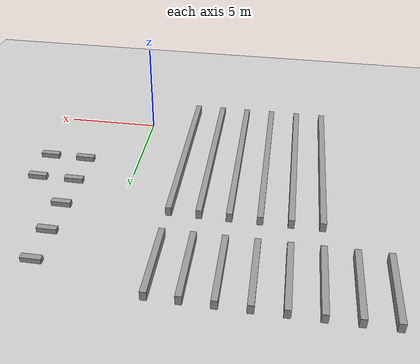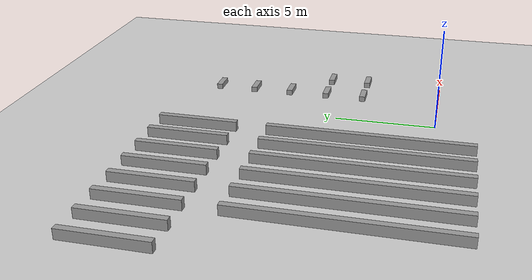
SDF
<sdf version="1.6">
 <world name="default">
  <model name="ground_plane">
   <static>1</static>
   <link name="link">
    <collision name="collision">
     <geometry><plane><normal>0 0 1</normal><size>100 100</size></plane></geometry>
     <surface><friction><ode><mu>100</mu><mu2>50</mu2></ode></friction></surface>
    </collision>
    <visual name="visual">
     <cast_shadows>0</cast_shadows>
     <geometry><plane><normal>0 0 1</normal><size>100 100</size></plane></geometry>
     <material>
      <script><uri>file://media/materials/scripts/gazebo.material</uri><name>Gazebo/Grey</name></script>
     </material>
    </visual>
   </link>
  </model>
  <model name="ss1_clone_1_0_clone_2">
   <link name="link_0">
    <inertial>
     <mass>1</mass>
     <inertia>
      <ixx>0.166667</ixx>
      <ixy>0</ixy>
      <ixz>0</ixz>
      <iyy>0.166667</iyy>
      <iyz>0</iyz>
      <izz>0.166667</izz>
     </inertia>
    </inertial>
    <visual name="visual">
     <geometry><box><size>0.3 10 0.5</size></box></geometry>
     <material>
      <lighting>1</lighting>
      <script><uri>file://media/materials/scripts/gazebo.material</uri><name>Gazebo/Grey</name></script>
      <ambient>0.3 0.3 0.3 1</ambient>
      <diffuse>0.7 0.7 0.7 1</diffuse>
      <specular>0.01 0.01 0.01 1</specular>
      <emissive>0 0 0 1</emissive>
      <shader type="vertex"><normal_map>__default__</normal_map></shader>
     </material>
    </visual>
    <collision name="collision">
     <geometry><box><size>0.3 10 0.5</size></box></geometry>
     <surface>
      <friction>
       <ode><mu>1</mu><mu2>1</mu2><fdir1>0 0 0</fdir1><slip1>0</slip1><slip2>0</slip2></ode>
       <torsional>
        <coefficient>1</coefficient>
        <patch_radius>0</patch_radius>
        <surface_radius>0</surface_radius>
        <use_patch_radius>1</use_patch_radius>
        <ode><slip>0</slip></ode>
       </torsional>
      </friction>
      <bounce><restitution_coefficient>0</restitution_coefficient><threshold>1e+06</threshold></bounce>
      <contact>
       <collide_without_contact>0</collide_without_contact>
       <collide_without_contact_bitmask>1</collide_without_contact_bitmask>
       <collide_bitmask>1</collide_bitmask>
       <ode>
        <soft_cfm>0</soft_cfm>
        <soft_erp>0.2</soft_erp>
        <kp>1e+13</kp>
        <kd>1</kd>
        <max_vel>0.01</max_vel>
        <min_depth>0</min_depth>
       </ode>
       <bullet>
        <split_impulse>1</split_impulse>
        <split_impulse_penetration_threshold>-0.01</split_impulse_penetration_threshold>
        <soft_cfm>0</soft_cfm>
        <soft_erp>0.2</soft_erp>
        <kp>1e+13</kp>
        <kd>1</kd>
       </bullet>
      </contact>
     </surface>
    </collision>
   </link>
   <static>0</static>
   <pose>-10 3 0.25 0 -0 0</pose>
  </model>
  <model name="ss1_clone_1_0_clone_3">
   <link name="link_0">
    <inertial>
     <mass>1</mass>
     <inertia>
      <ixx>0.166667</ixx>
      <ixy>0</ixy>
      <ixz>0</ixz>
      <iyy>0.166667</iyy>
      <iyz>0</iyz>
      <izz>0.166667</izz>
     </inertia>
    </inertial>
    <visual name="visual">
     <geometry><box><size>0.3 10 0.5</size></box></geometry>
     <material>
      <lighting>1</lighting>
      <script><uri>file://media/materials/scripts/gazebo.material</uri><name>Gazebo/Grey</name></script>
      <ambient>0.3 0.3 0.3 1</ambient>
      <diffuse>0.7 0.7 0.7 1</diffuse>
      <specular>0.01 0.01 0.01 1</specular>
      <emissive>0 0 0 1</emissive>
      <shader type="vertex"><normal_map>__default__</normal_map></shader>
     </material>
    </visual>
    <collision name="collision">
     <geometry><box><size>0.3 10 0.5</size></box></geometry>
     <surface>
      <friction>
       <ode><mu>1</mu><mu2>1</mu2><fdir1>0 0 0</fdir1><slip1>0</slip1><slip2>0</slip2></ode>
       <torsional>
        <coefficient>1</coefficient>
        <patch_radius>0</patch_radius>
        <surface_radius>0</surface_radius>
        <use_patch_radius>1</use_patch_radius>
        <ode><slip>0</slip></ode>
       </torsional>
      </friction>
      <bounce><restitution_coefficient>0</restitution_coefficient><threshold>1e+06</threshold></bounce>
      <contact>
       <collide_without_contact>0</collide_without_contact>
       <collide_without_contact_bitmask>1</collide_without_contact_bitmask>
       <collide_bitmask>1</collide_bitmask>
       <ode>
        <soft_cfm>0</soft_cfm>
        <soft_erp>0.2</soft_erp>
        <kp>1e+13</kp>
        <kd>1</kd>
        <max_vel>0.01</max_vel>
        <min_depth>0</min_depth>
       </ode>
       <bullet>
        <split_impulse>1</split_impulse>
        <split_impulse_penetration_threshold>-0.01</split_impulse_penetration_threshold>
        <soft_cfm>0</soft_cfm>
        <soft_erp>0.2</soft_erp>
        <kp>1e+13</kp>
        <kd>1</kd>
       </bullet>
      </contact>
     </surface>
    </collision>
   </link>
   <static>0</static>
   <pose>-8.5 3 0.25 0 -0 0</pose>
  </model>
  <model name="ss1_clone_1_0_clone_4">
   <link name="link_0">
    <inertial>
     <mass>1</mass>
     <inertia>
      <ixx>0.166667</ixx>
      <ixy>0</ixy>
      <ixz>0</ixz>
      <iyy>0.166667</iyy>
      <iyz>0</iyz>
      <izz>0.166667</izz>
     </inertia>
    </inertial>
    <visual name="visual">
     <geometry><box><size>0.3 10 0.5</size></box></geometry>
     <material>
      <lighting>1</lighting>
      <script><uri>file://media/materials/scripts/gazebo.material</uri><name>Gazebo/Grey</name></script>
      <ambient>0.3 0.3 0.3 1</ambient>
      <diffuse>0.7 0.7 0.7 1</diffuse>
      <specular>0.01 0.01 0.01 1</specular>
      <emissive>0 0 0 1</emissive>
      <shader type="vertex"><normal_map>__default__</normal_map></shader>
     </material>
    </visual>
    <collision name="collision">
     <geometry><box><size>0.3 10 0.5</size></box></geometry>
     <surface>
      <friction>
       <ode><mu>1</mu><mu2>1</mu2><fdir1>0 0 0</fdir1><slip1>0</slip1><slip2>0</slip2></ode>
       <torsional>
        <coefficient>1</coefficient>
        <patch_radius>0</patch_radius>
        <surface_radius>0</surface_radius>
        <use_patch_radius>1</use_patch_radius>
        <ode><slip>0</slip></ode>
       </torsional>
      </friction>
      <bounce><restitution_coefficient>0</restitution_coefficient><threshold>1e+06</threshold></bounce>
      <contact>
       <collide_without_contact>0</collide_without_contact>
       <collide_without_contact_bitmask>1</collide_without_contact_bitmask>
       <collide_bitmask>1</collide_bitmask>
       <ode>
        <soft_cfm>0</soft_cfm>
        <soft_erp>0.2</soft_erp>
        <kp>1e+13</kp>
        <kd>1</kd>
        <max_vel>0.01</max_vel>
        <min_depth>0</min_depth>
       </ode>
       <bullet>
        <split_impulse>1</split_impulse>
        <split_impulse_penetration_threshold>-0.01</split_impulse_penetration_threshold>
        <soft_cfm>0</soft_cfm>
        <soft_erp>0.2</soft_erp>
        <kp>1e+13</kp>
        <kd>1</kd>
       </bullet>
      </contact>
     </surface>
    </collision>
   </link>
   <static>0</static>
   <pose>-7 3 0.25 0 -0 0</pose>
  </model>
  <model name="ss1_clone_1_0_clone_5">
   <link name="link_0">
    <inertial>
     <mass>1</mass>
     <inertia>
      <ixx>0.166667</ixx>
      <ixy>0</ixy>
      <ixz>0</ixz>
      <iyy>0.166667</iyy>
      <iyz>0</iyz>
      <izz>0.166667</izz>
     </inertia>
    </inertial>
    <visual name="visual">
     <geometry><box><size>0.3 10 0.5</size></box></geometry>
     <material>
      <lighting>1</lighting>
      <script><uri>file://media/materials/scripts/gazebo.material</uri><name>Gazebo/Grey</name></script>
      <ambient>0.3 0.3 0.3 1</ambient>
      <diffuse>0.7 0.7 0.7 1</diffuse>
      <specular>0.01 0.01 0.01 1</specular>
      <emissive>0 0 0 1</emissive>
      <shader type="vertex"><normal_map>__default__</normal_map></shader>
     </material>
    </visual>
    <collision name="collision">
     <geometry><box><size>0.3 10 0.5</size></box></geometry>
     <surface>
      <friction>
       <ode><mu>1</mu><mu2>1</mu2><fdir1>0 0 0</fdir1><slip1>0</slip1><slip2>0</slip2></ode>
       <torsional>
        <coefficient>1</coefficient>
        <patch_radius>0</patch_radius>
        <surface_radius>0</surface_radius>
        <use_patch_radius>1</use_patch_radius>
        <ode><slip>0</slip></ode>
       </torsional>
      </friction>
      <bounce><restitution_coefficient>0</restitution_coefficient><threshold>1e+06</threshold></bounce>
      <contact>
       <collide_without_contact>0</collide_without_contact>
       <collide_without_contact_bitmask>1</collide_without_contact_bitmask>
       <collide_bitmask>1</collide_bitmask>
       <ode>
        <soft_cfm>0</soft_cfm>
        <soft_erp>0.2</soft_erp>
        <kp>1e+13</kp>
        <kd>1</kd>
        <max_vel>0.01</max_vel>
        <min_depth>0</min_depth>
       </ode>
       <bullet>
        <split_impulse>1</split_impulse>
        <split_impulse_penetration_threshold>-0.01</split_impulse_penetration_threshold>
        <soft_cfm>0</soft_cfm>
        <soft_erp>0.2</soft_erp>
        <kp>1e+13</kp>
        <kd>1</kd>
       </bullet>
      </contact>
     </surface>
    </collision>
   </link>
   <static>0</static>
   <pose>-5.5 3 0.25 0 -0 0</pose>
  </model>
  <model name="ss1_clone_1_0_clone_6">
   <link name="link_0">
    <inertial>
     <mass>1</mass>
     <inertia>
      <ixx>0.166667</ixx>
      <ixy>0</ixy>
      <ixz>0</ixz>
      <iyy>0.166667</iyy>
      <iyz>0</iyz>
      <izz>0.166667</izz>
     </inertia>
    </inertial>
    <visual name="visual">
     <geometry><box><size>0.3 10 0.5</size></box></geometry>
     <material>
      <lighting>1</lighting>
      <script><uri>file://media/materials/scripts/gazebo.material</uri><name>Gazebo/Grey</name></script>
      <ambient>0.3 0.3 0.3 1</ambient>
      <diffuse>0.7 0.7 0.7 1</diffuse>
      <specular>0.01 0.01 0.01 1</specular>
      <emissive>0 0 0 1</emissive>
      <shader type="vertex"><normal_map>__default__</normal_map></shader>
     </material>
    </visual>
    <collision name="collision">
     <geometry><box><size>0.3 10 0.5</size></box></geometry>
     <surface>
      <friction>
       <ode><mu>1</mu><mu2>1</mu2><fdir1>0 0 0</fdir1><slip1>0</slip1><slip2>0</slip2></ode>
       <torsional>
        <coefficient>1</coefficient>
        <patch_radius>0</patch_radius>
        <surface_radius>0</surface_radius>
        <use_patch_radius>1</use_patch_radius>
        <ode><slip>0</slip></ode>
       </torsional>
      </friction>
      <bounce><restitution_coefficient>0</restitution_coefficient><threshold>1e+06</threshold></bounce>
      <contact>
       <collide_without_contact>0</collide_without_contact>
       <collide_without_contact_bitmask>1</collide_without_contact_bitmask>
       <collide_bitmask>1</collide_bitmask>
       <ode>
        <soft_cfm>0</soft_cfm>
        <soft_erp>0.2</soft_erp>
        <kp>1e+13</kp>
        <kd>1</kd>
        <max_vel>0.01</max_vel>
        <min_depth>0</min_depth>
       </ode>
       <bullet>
        <split_impulse>1</split_impulse>
        <split_impulse_penetration_threshold>-0.01</split_impulse_penetration_threshold>
        <soft_cfm>0</soft_cfm>
        <soft_erp>0.2</soft_erp>
        <kp>1e+13</kp>
        <kd>1</kd>
       </bullet>
      </contact>
     </surface>
    </collision>
   </link>
   <static>0</static>
   <pose>-4 3 0.25 0 -0 0</pose>
  </model>
  <model name="ss1_clone_1_0_clone_7">
   <link name="link_0">
    <inertial>
     <mass>1</mass>
     <inertia>
      <ixx>0.166667</ixx>
      <ixy>0</ixy>
      <ixz>0</ixz>
      <iyy>0.166667</iyy>
      <iyz>0</iyz>
      <izz>0.166667</izz>
     </inertia>
    </inertial>
    <visual name="visual">
     <geometry><box><size>0.3 10 0.5</size></box></geometry>
     <material>
      <lighting>1</lighting>
      <script><uri>file://media/materials/scripts/gazebo.material</uri><name>Gazebo/Grey</name></script>
      <ambient>0.3 0.3 0.3 1</ambient>
      <diffuse>0.7 0.7 0.7 1</diffuse>
      <specular>0.01 0.01 0.01 1</specular>
      <emissive>0 0 0 1</emissive>
      <shader type="vertex"><normal_map>__default__</normal_map></shader>
     </material>
    </visual>
    <collision name="collision">
     <geometry><box><size>0.3 10 0.5</size></box></geometry>
     <surface>
      <friction>
       <ode><mu>1</mu><mu2>1</mu2><fdir1>0 0 0</fdir1><slip1>0</slip1><slip2>0</slip2></ode>
       <torsional>
        <coefficient>1</coefficient>
        <patch_radius>0</patch_radius>
        <surface_radius>0</surface_radius>
        <use_patch_radius>1</use_patch_radius>
        <ode><slip>0</slip></ode>
       </torsional>
      </friction>
      <bounce><restitution_coefficient>0</restitution_coefficient><threshold>1e+06</threshold></bounce>
      <contact>
       <collide_without_contact>0</collide_without_contact>
       <collide_without_contact_bitmask>1</collide_without_contact_bitmask>
       <collide_bitmask>1</collide_bitmask>
       <ode>
        <soft_cfm>0</soft_cfm>
        <soft_erp>0.2</soft_erp>
        <kp>1e+13</kp>
        <kd>1</kd>
        <max_vel>0.01</max_vel>
        <min_depth>0</min_depth>
       </ode>
       <bullet>
        <split_impulse>1</split_impulse>
        <split_impulse_penetration_threshold>-0.01</split_impulse_penetration_threshold>
        <soft_cfm>0</soft_cfm>
        <soft_erp>0.2</soft_erp>
        <kp>1e+13</kp>
        <kd>1</kd>
       </bullet>
      </contact>
     </surface>
    </collision>
   </link>
   <static>0</static>
   <pose>-2.5 3 0.25 0 -0 0</pose>
  </model>
  <model name="ss1_me">
   <link name="link_0">
    <inertial>
     <mass>1</mass>
     <inertia>
      <ixx>0.166667</ixx>
      <ixy>0</ixy>
      <ixz>0</ixz>
      <iyy>0.166667</iyy>
      <iyz>0</iyz>
      <izz>0.166667</izz>
     </inertia>
    </inertial>
    <visual name="visual">
     <geometry><box><size>0.3 4 0.5</size></box></geometry>
     <material>
      <lighting>1</lighting>
      <script><uri>file://media/materials/scripts/gazebo.material</uri><name>Gazebo/Grey</name></script>
      <ambient>0.3 0.3 0.3 1</ambient>
      <diffuse>0.7 0.7 0.7 1</diffuse>
      <specular>0.01 0.01 0.01 1</specular>
      <emissive>0 0 0 1</emissive>
      <shader type="vertex"><normal_map>__default__</normal_map></shader>
     </material>
    </visual>
    <collision name="collision">
     <geometry><box><size>0.3 1 0.5</size></box></geometry>
     <surface>
      <friction>
       <ode><mu>1</mu><mu2>1</mu2><fdir1>0 0 0</fdir1><slip1>0</slip1><slip2>0</slip2></ode>
       <torsional>
        <coefficient>1</coefficient>
        <patch_radius>0</patch_radius>
        <surface_radius>0</surface_radius>
        <use_patch_radius>1</use_patch_radius>
        <ode><slip>0</slip></ode>
       </torsional>
      </friction>
      <bounce><restitution_coefficient>0</restitution_coefficient><threshold>1e+06</threshold></bounce>
      <contact>
       <collide_without_contact>0</collide_without_contact>
       <collide_without_contact_bitmask>1</collide_without_contact_bitmask>
       <collide_bitmask>1</collide_bitmask>
       <ode>
        <soft_cfm>0</soft_cfm>
        <soft_erp>0.2</soft_erp>
        <kp>1e+13</kp>
        <kd>1</kd>
        <max_vel>0.01</max_vel>
        <min_depth>0</min_depth>
       </ode>
       <bullet>
        <split_impulse>1</split_impulse>
        <split_impulse_penetration_threshold>-0.01</split_impulse_penetration_threshold>
        <soft_cfm>0</soft_cfm>
        <soft_erp>0.2</soft_erp>
        <kp>1e+13</kp>
        <kd>1</kd>
       </bullet>
      </contact>
     </surface>
    </collision>
   </link>
   <static>0</static>
   <pose>-13 11.5 0.249999 0 -0 0</pose>
  </model>
  <model name="ss1_me_clone">
   <link name="link_0">
    <inertial>
     <mass>1</mass>
     <inertia>
      <ixx>0.166667</ixx>
      <ixy>0</ixy>
      <ixz>0</ixz>
      <iyy>0.166667</iyy>
      <iyz>0</iyz>
      <izz>0.166667</izz>
     </inertia>
    </inertial>
    <visual name="visual">
     <geometry><box><size>0.3 4 0.5</size></box></geometry>
     <material>
      <lighting>1</lighting>
      <script><uri>file://media/materials/scripts/gazebo.material</uri><name>Gazebo/Grey</name></script>
      <ambient>0.3 0.3 0.3 1</ambient>
      <diffuse>0.7 0.7 0.7 1</diffuse>
      <specular>0.01 0.01 0.01 1</specular>
      <emissive>0 0 0 1</emissive>
      <shader type="vertex"><normal_map>__default__</normal_map></shader>
     </material>
    </visual>
    <collision name="collision">
     <geometry><box><size>0.3 1 0.5</size></box></geometry>
     <surface>
      <friction>
       <ode><mu>1</mu><mu2>1</mu2><fdir1>0 0 0</fdir1><slip1>0</slip1><slip2>0</slip2></ode>
       <torsional>
        <coefficient>1</coefficient>
        <patch_radius>0</patch_radius>
        <surface_radius>0</surface_radius>
        <use_patch_radius>1</use_patch_radius>
        <ode><slip>0</slip></ode>
       </torsional>
      </friction>
      <bounce><restitution_coefficient>0</restitution_coefficient><threshold>1e+06</threshold></bounce>
      <contact>
       <collide_without_contact>0</collide_without_contact>
       <collide_without_contact_bitmask>1</collide_without_contact_bitmask>
       <collide_bitmask>1</collide_bitmask>
       <ode>
        <soft_cfm>0</soft_cfm>
        <soft_erp>0.2</soft_erp>
        <kp>1e+13</kp>
        <kd>1</kd>
        <max_vel>0.01</max_vel>
        <min_depth>0</min_depth>
       </ode>
       <bullet>
        <split_impulse>1</split_impulse>
        <split_impulse_penetration_threshold>-0.01</split_impulse_penetration_threshold>
        <soft_cfm>0</soft_cfm>
        <soft_erp>0.2</soft_erp>
        <kp>1e+13</kp>
        <kd>1</kd>
       </bullet>
      </contact>
     </surface>
    </collision>
   </link>
   <static>0</static>
   <pose>-11.5 11.5 0.249999 0 -0 0</pose>
  </model>
  <model name="ss1_me_clone_0">
   <link name="link_0">
    <inertial>
     <mass>1</mass>
     <inertia>
      <ixx>0.166667</ixx>
      <ixy>0</ixy>
      <ixz>0</ixz>
      <iyy>0.166667</iyy>
      <iyz>0</iyz>
      <izz>0.166667</izz>
     </inertia>
    </inertial>
    <visual name="visual">
     <geometry><box><size>0.3 4 0.5</size></box></geometry>
     <material>
      <lighting>1</lighting>
      <script><uri>file://media/materials/scripts/gazebo.material</uri><name>Gazebo/Grey</name></script>
      <ambient>0.3 0.3 0.3 1</ambient>
      <diffuse>0.7 0.7 0.7 1</diffuse>
      <specular>0.01 0.01 0.01 1</specular>
      <emissive>0 0 0 1</emissive>
      <shader type="vertex"><normal_map>__default__</normal_map></shader>
     </material>
    </visual>
    <collision name="collision">
     <geometry><box><size>0.3 1 0.5</size></box></geometry>
     <surface>
      <friction>
       <ode><mu>1</mu><mu2>1</mu2><fdir1>0 0 0</fdir1><slip1>0</slip1><slip2>0</slip2></ode>
       <torsional>
        <coefficient>1</coefficient>
        <patch_radius>0</patch_radius>
        <surface_radius>0</surface_radius>
        <use_patch_radius>1</use_patch_radius>
        <ode><slip>0</slip></ode>
       </torsional>
      </friction>
      <bounce><restitution_coefficient>0</restitution_coefficient><threshold>1e+06</threshold></bounce>
      <contact>
       <collide_without_contact>0</collide_without_contact>
       <collide_without_contact_bitmask>1</collide_without_contact_bitmask>
       <collide_bitmask>1</collide_bitmask>
       <ode>
        <soft_cfm>0</soft_cfm>
        <soft_erp>0.2</soft_erp>
        <kp>1e+13</kp>
        <kd>1</kd>
        <max_vel>0.01</max_vel>
        <min_depth>0</min_depth>
       </ode>
       <bullet>
        <split_impulse>1</split_impulse>
        <split_impulse_penetration_threshold>-0.01</split_impulse_penetration_threshold>
        <soft_cfm>0</soft_cfm>
        <soft_erp>0.2</soft_erp>
        <kp>1e+13</kp>
        <kd>1</kd>
       </bullet>
      </contact>
     </surface>
    </collision>
   </link>
   <static>0</static>
   <pose>-10 11.5 0.25 0 -0 0</pose>
  </model>
  <model name="ss1_me_clone_1">
   <link name="link_0">
    <inertial>
     <mass>1</mass>
     <inertia>
      <ixx>0.166667</ixx>
      <ixy>0</ixy>
      <ixz>0</ixz>
      <iyy>0.166667</iyy>
      <iyz>0</iyz>
      <izz>0.166667</izz>
     </inertia>
    </inertial>
    <visual name="visual">
     <geometry><box><size>0.3 4 0.5</size></box></geometry>
     <material>
      <lighting>1</lighting>
      <script><uri>file://media/materials/scripts/gazebo.material</uri><name>Gazebo/Grey</name></script>
      <ambient>0.3 0.3 0.3 1</ambient>
      <diffuse>0.7 0.7 0.7 1</diffuse>
      <specular>0.01 0.01 0.01 1</specular>
      <emissive>0 0 0 1</emissive>
      <shader type="vertex"><normal_map>__default__</normal_map></shader>
     </material>
    </visual>
    <collision name="collision">
     <geometry><box><size>0.3 1 0.5</size></box></geometry>
     <surface>
      <friction>
       <ode><mu>1</mu><mu2>1</mu2><fdir1>0 0 0</fdir1><slip1>0</slip1><slip2>0</slip2></ode>
       <torsional>
        <coefficient>1</coefficient>
        <patch_radius>0</patch_radius>
        <surface_radius>0</surface_radius>
        <use_patch_radius>1</use_patch_radius>
        <ode><slip>0</slip></ode>
       </torsional>
      </friction>
      <bounce><restitution_coefficient>0</restitution_coefficient><threshold>1e+06</threshold></bounce>
      <contact>
       <collide_without_contact>0</collide_without_contact>
       <collide_without_contact_bitmask>1</collide_without_contact_bitmask>
       <collide_bitmask>1</collide_bitmask>
       <ode>
        <soft_cfm>0</soft_cfm>
        <soft_erp>0.2</soft_erp>
        <kp>1e+13</kp>
        <kd>1</kd>
        <max_vel>0.01</max_vel>
        <min_depth>0</min_depth>
       </ode>
       <bullet>
        <split_impulse>1</split_impulse>
        <split_impulse_penetration_threshold>-0.01</split_impulse_penetration_threshold>
        <soft_cfm>0</soft_cfm>
        <soft_erp>0.2</soft_erp>
        <kp>1e+13</kp>
        <kd>1</kd>
       </bullet>
      </contact>
     </surface>
    </collision>
   </link>
   <static>0</static>
   <pose>-8.5 11.5 0.249999 0 -0 0</pose>
  </model>
  <model name="ss1_me_clone_2">
   <link name="link_0">
    <inertial>
     <mass>1</mass>
     <inertia>
      <ixx>0.166667</ixx>
      <ixy>0</ixy>
      <ixz>0</ixz>
      <iyy>0.166667</iyy>
      <iyz>0</iyz>
      <izz>0.166667</izz>
     </inertia>
    </inertial>
    <visual name="visual">
     <geometry><box><size>0.3 4 0.5</size></box></geometry>
     <material>
      <lighting>1</lighting>
      <script><uri>file://media/materials/scripts/gazebo.material</uri><name>Gazebo/Grey</name></script>
      <ambient>0.3 0.3 0.3 1</ambient>
      <diffuse>0.7 0.7 0.7 1</diffuse>
      <specular>0.01 0.01 0.01 1</specular>
      <emissive>0 0 0 1</emissive>
      <shader type="vertex"><normal_map>__default__</normal_map></shader>
     </material>
    </visual>
    <collision name="collision">
     <geometry><box><size>0.3 1 0.5</size></box></geometry>
     <surface>
      <friction>
       <ode><mu>1</mu><mu2>1</mu2><fdir1>0 0 0</fdir1><slip1>0</slip1><slip2>0</slip2></ode>
       <torsional>
        <coefficient>1</coefficient>
        <patch_radius>0</patch_radius>
        <surface_radius>0</surface_radius>
        <use_patch_radius>1</use_patch_radius>
        <ode><slip>0</slip></ode>
       </torsional>
      </friction>
      <bounce><restitution_coefficient>0</restitution_coefficient><threshold>1e+06</threshold></bounce>
      <contact>
       <collide_without_contact>0</collide_without_contact>
       <collide_without_contact_bitmask>1</collide_without_contact_bitmask>
       <collide_bitmask>1</collide_bitmask>
       <ode>
        <soft_cfm>0</soft_cfm>
        <soft_erp>0.2</soft_erp>
        <kp>1e+13</kp>
        <kd>1</kd>
        <max_vel>0.01</max_vel>
        <min_depth>0</min_depth>
       </ode>
       <bullet>
        <split_impulse>1</split_impulse>
        <split_impulse_penetration_threshold>-0.01</split_impulse_penetration_threshold>
        <soft_cfm>0</soft_cfm>
        <soft_erp>0.2</soft_erp>
        <kp>1e+13</kp>
        <kd>1</kd>
       </bullet>
      </contact>
     </surface>
    </collision>
   </link>
   <static>0</static>
   <pose>-7 11.5 0.249999 0 -0 0</pose>
  </model>
  <model name="ss1_me_clone_3">
   <link name="link_0">
    <inertial>
     <mass>1</mass>
     <inertia>
      <ixx>0.166667</ixx>
      <ixy>0</ixy>
      <ixz>0</ixz>
      <iyy>0.166667</iyy>
      <iyz>0</iyz>
      <izz>0.166667</izz>
     </inertia>
    </inertial>
    <visual name="visual">
     <geometry><box><size>0.3 4 0.5</size></box></geometry>
     <material>
      <lighting>1</lighting>
      <script><uri>file://media/materials/scripts/gazebo.material</uri><name>Gazebo/Grey</name></script>
      <ambient>0.3 0.3 0.3 1</ambient>
      <diffuse>0.7 0.7 0.7 1</diffuse>
      <specular>0.01 0.01 0.01 1</specular>
      <emissive>0 0 0 1</emissive>
      <shader type="vertex"><normal_map>__default__</normal_map></shader>
     </material>
    </visual>
    <collision name="collision">
     <geometry><box><size>0.3 1 0.5</size></box></geometry>
     <surface>
      <friction>
       <ode><mu>1</mu><mu2>1</mu2><fdir1>0 0 0</fdir1><slip1>0</slip1><slip2>0</slip2></ode>
       <torsional>
        <coefficient>1</coefficient>
        <patch_radius>0</patch_radius>
        <surface_radius>0</surface_radius>
        <use_patch_radius>1</use_patch_radius>
        <ode><slip>0</slip></ode>
       </torsional>
      </friction>
      <bounce><restitution_coefficient>0</restitution_coefficient><threshold>1e+06</threshold></bounce>
      <contact>
       <collide_without_contact>0</collide_without_contact>
       <collide_without_contact_bitmask>1</collide_without_contact_bitmask>
       <collide_bitmask>1</collide_bitmask>
       <ode>
        <soft_cfm>0</soft_cfm>
        <soft_erp>0.2</soft_erp>
        <kp>1e+13</kp>
        <kd>1</kd>
        <max_vel>0.01</max_vel>
        <min_depth>0</min_depth>
       </ode>
       <bullet>
        <split_impulse>1</split_impulse>
        <split_impulse_penetration_threshold>-0.01</split_impulse_penetration_threshold>
        <soft_cfm>0</soft_cfm>
        <soft_erp>0.2</soft_erp>
        <kp>1e+13</kp>
        <kd>1</kd>
       </bullet>
      </contact>
     </surface>
    </collision>
   </link>
   <static>0</static>
   <pose>-5.5 11.5 0.249999 0 -0 0</pose>
  </model>
  <model name="ss1_me_clone_4">
   <link name="link_0">
    <inertial>
     <mass>1</mass>
     <inertia>
      <ixx>0.166667</ixx>
      <ixy>0</ixy>
      <ixz>0</ixz>
      <iyy>0.166667</iyy>
      <iyz>0</iyz>
      <izz>0.166667</izz>
     </inertia>
    </inertial>
    <visual name="visual">
     <geometry><box><size>0.3 4 0.5</size></box></geometry>
     <material>
      <lighting>1</lighting>
      <script><uri>file://media/materials/scripts/gazebo.material</uri><name>Gazebo/Grey</name></script>
      <ambient>0.3 0.3 0.3 1</ambient>
      <diffuse>0.7 0.7 0.7 1</diffuse>
      <specular>0.01 0.01 0.01 1</specular>
      <emissive>0 0 0 1</emissive>
      <shader type="vertex"><normal_map>__default__</normal_map></shader>
     </material>
    </visual>
    <collision name="collision">
     <geometry><box><size>0.3 1 0.5</size></box></geometry>
     <surface>
      <friction>
       <ode><mu>1</mu><mu2>1</mu2><fdir1>0 0 0</fdir1><slip1>0</slip1><slip2>0</slip2></ode>
       <torsional>
        <coefficient>1</coefficient>
        <patch_radius>0</patch_radius>
        <surface_radius>0</surface_radius>
        <use_patch_radius>1</use_patch_radius>
        <ode><slip>0</slip></ode>
       </torsional>
      </friction>
      <bounce><restitution_coefficient>0</restitution_coefficient><threshold>1e+06</threshold></bounce>
      <contact>
       <collide_without_contact>0</collide_without_contact>
       <collide_without_contact_bitmask>1</collide_without_contact_bitmask>
       <collide_bitmask>1</collide_bitmask>
       <ode>
        <soft_cfm>0</soft_cfm>
        <soft_erp>0.2</soft_erp>
        <kp>1e+13</kp>
        <kd>1</kd>
        <max_vel>0.01</max_vel>
        <min_depth>0</min_depth>
       </ode>
       <bullet>
        <split_impulse>1</split_impulse>
        <split_impulse_penetration_threshold>-0.01</split_impulse_penetration_threshold>
        <soft_cfm>0</soft_cfm>
        <soft_erp>0.2</soft_erp>
        <kp>1e+13</kp>
        <kd>1</kd>
       </bullet>
      </contact>
     </surface>
    </collision>
   </link>
   <static>0</static>
   <pose>-4 11.5 0.249999 0 -0 0</pose>
  </model>
  <model name="ss1_me_clone_5">
   <link name="link_0">
    <inertial>
     <mass>1</mass>
     <inertia>
      <ixx>0.166667</ixx>
      <ixy>0</ixy>
      <ixz>0</ixz>
      <iyy>0.166667</iyy>
      <iyz>0</iyz>
      <izz>0.166667</izz>
     </inertia>
    </inertial>
    <visual name="visual">
     <geometry><box><size>0.3 4 0.5</size></box></geometry>
     <material>
      <lighting>1</lighting>
      <script><uri>file://media/materials/scripts/gazebo.material</uri><name>Gazebo/Grey</name></script>
      <ambient>0.3 0.3 0.3 1</ambient>
      <diffuse>0.7 0.7 0.7 1</diffuse>
      <specular>0.01 0.01 0.01 1</specular>
      <emissive>0 0 0 1</emissive>
      <shader type="vertex"><normal_map>__default__</normal_map></shader>
     </material>
    </visual>
    <collision name="collision">
     <geometry><box><size>0.3 1 0.5</size></box></geometry>
     <surface>
      <friction>
       <ode><mu>1</mu><mu2>1</mu2><fdir1>0 0 0</fdir1><slip1>0</slip1><slip2>0</slip2></ode>
       <torsional>
        <coefficient>1</coefficient>
        <patch_radius>0</patch_radius>
        <surface_radius>0</surface_radius>
        <use_patch_radius>1</use_patch_radius>
        <ode><slip>0</slip></ode>
       </torsional>
      </friction>
      <bounce><restitution_coefficient>0</restitution_coefficient><threshold>1e+06</threshold></bounce>
      <contact>
       <collide_without_contact>0</collide_without_contact>
       <collide_without_contact_bitmask>1</collide_without_contact_bitmask>
       <collide_bitmask>1</collide_bitmask>
       <ode>
        <soft_cfm>0</soft_cfm>
        <soft_erp>0.2</soft_erp>
        <kp>1e+13</kp>
        <kd>1</kd>
        <max_vel>0.01</max_vel>
        <min_depth>0</min_depth>
       </ode>
       <bullet>
        <split_impulse>1</split_impulse>
        <split_impulse_penetration_threshold>-0.01</split_impulse_penetration_threshold>
        <soft_cfm>0</soft_cfm>
        <soft_erp>0.2</soft_erp>
        <kp>1e+13</kp>
        <kd>1</kd>
       </bullet>
      </contact>
     </surface>
    </collision>
   </link>
   <static>0</static>
   <pose>-2.5 11.5 0.249999 0 -0 0</pose>
  </model>
  <model name="ss1_0_clone_clone_15">
   <link name="link_0">
    <inertial>
     <mass>1</mass>
     <inertia>
      <ixx>0.166667</ixx>
      <ixy>0</ixy>
      <ixz>0</ixz>
      <iyy>0.166667</iyy>
      <iyz>0</iyz>
      <izz>0.166667</izz>
     </inertia>
    </inertial>
    <visual name="visual">
     <geometry><box><size>0.3 1 0.5</size></box></geometry>
     <material>
      <lighting>1</lighting>
      <script><uri>file://media/materials/scripts/gazebo.material</uri><name>Gazebo/Grey</name></script>
      <ambient>0.3 0.3 0.3 1</ambient>
      <diffuse>0.7 0.7 0.7 1</diffuse>
      <specular>0.01 0.01 0.01 1</specular>
      <emissive>0 0 0 1</emissive>
      <shader type="vertex"><normal_map>__default__</normal_map></shader>
     </material>
    </visual>
    <collision name="collision">
     <geometry><box><size>0.3 1 0.5</size></box></geometry>
     <surface>
      <friction>
       <ode><mu>1</mu><mu2>1</mu2><fdir1>0 0 0</fdir1><slip1>0</slip1><slip2>0</slip2></ode>
       <torsional>
        <coefficient>1</coefficient>
        <patch_radius>0</patch_radius>
        <surface_radius>0</surface_radius>
        <use_patch_radius>1</use_patch_radius>
        <ode><slip>0</slip></ode>
       </torsional>
      </friction>
      <bounce><restitution_coefficient>0</restitution_coefficient><threshold>1e+06</threshold></bounce>
      <contact>
       <collide_without_contact>0</collide_without_contact>
       <collide_without_contact_bitmask>1</collide_without_contact_bitmask>
       <collide_bitmask>1</collide_bitmask>
       <ode>
        <soft_cfm>0</soft_cfm>
        <soft_erp>0.2</soft_erp>
        <kp>1e+13</kp>
        <kd>1</kd>
        <max_vel>0.01</max_vel>
        <min_depth>0</min_depth>
       </ode>
       <bullet>
        <split_impulse>1</split_impulse>
        <split_impulse_penetration_threshold>-0.01</split_impulse_penetration_threshold>
        <soft_cfm>0</soft_cfm>
        <soft_erp>0.2</soft_erp>
        <kp>1e+13</kp>
        <kd>1</kd>
       </bullet>
      </contact>
     </surface>
    </collision>
   </link>
   <static>0</static>
   <pose>3 4 0 0 -0 1.5708</pose>
  </model>
  <model name="ss1_0_clone_clone_16">
   <link name="link_0">
    <inertial>
     <mass>1</mass>
     <inertia>
      <ixx>0.166667</ixx>
      <ixy>0</ixy>
      <ixz>0</ixz>
      <iyy>0.166667</iyy>
      <iyz>0</iyz>
      <izz>0.166667</izz>
     </inertia>
    </inertial>
    <visual name="visual">
     <geometry><box><size>0.3 1 0.5</size></box></geometry>
     <material>
      <lighting>1</lighting>
      <script><uri>file://media/materials/scripts/gazebo.material</uri><name>Gazebo/Grey</name></script>
      <ambient>0.3 0.3 0.3 1</ambient>
      <diffuse>0.7 0.7 0.7 1</diffuse>
      <specular>0.01 0.01 0.01 1</specular>
      <emissive>0 0 0 1</emissive>
      <shader type="vertex"><normal_map>__default__</normal_map></shader>
     </material>
    </visual>
    <collision name="collision">
     <geometry><box><size>0.3 1 0.5</size></box></geometry>
     <surface>
      <friction>
       <ode><mu>1</mu><mu2>1</mu2><fdir1>0 0 0</fdir1><slip1>0</slip1><slip2>0</slip2></ode>
       <torsional>
        <coefficient>1</coefficient>
        <patch_radius>0</patch_radius>
        <surface_radius>0</surface_radius>
        <use_patch_radius>1</use_patch_radius>
        <ode><slip>0</slip></ode>
       </torsional>
      </friction>
      <bounce><restitution_coefficient>0</restitution_coefficient><threshold>1e+06</threshold></bounce>
      <contact>
       <collide_without_contact>0</collide_without_contact>
       <collide_without_contact_bitmask>1</collide_without_contact_bitmask>
       <collide_bitmask>1</collide_bitmask>
       <ode>
        <soft_cfm>0</soft_cfm>
        <soft_erp>0.2</soft_erp>
        <kp>1e+13</kp>
        <kd>1</kd>
        <max_vel>0.01</max_vel>
        <min_depth>0</min_depth>
       </ode>
       <bullet>
        <split_impulse>1</split_impulse>
        <split_impulse_penetration_threshold>-0.01</split_impulse_penetration_threshold>
        <soft_cfm>0</soft_cfm>
        <soft_erp>0.2</soft_erp>
        <kp>1e+13</kp>
        <kd>1</kd>
       </bullet>
      </contact>
     </surface>
    </collision>
   </link>
   <static>0</static>
   <pose>3 6 0 0 -0 1.5708</pose>
  </model>
  <model name="ss1_0_clone_clone_17">
   <link name="link_0">
    <inertial>
     <mass>1</mass>
     <inertia>
      <ixx>0.166667</ixx>
      <ixy>0</ixy>
      <ixz>0</ixz>
      <iyy>0.166667</iyy>
      <iyz>0</iyz>
      <izz>0.166667</izz>
     </inertia>
    </inertial>
    <visual name="visual">
     <geometry><box><size>0.3 1 0.5</size></box></geometry>
     <material>
      <lighting>1</lighting>
      <script><uri>file://media/materials/scripts/gazebo.material</uri><name>Gazebo/Grey</name></script>
      <ambient>0.3 0.3 0.3 1</ambient>
      <diffuse>0.7 0.7 0.7 1</diffuse>
      <specular>0.01 0.01 0.01 1</specular>
      <emissive>0 0 0 1</emissive>
      <shader type="vertex"><normal_map>__default__</normal_map></shader>
     </material>
    </visual>
    <collision name="collision">
     <geometry><box><size>0.3 1 0.5</size></box></geometry>
     <surface>
      <friction>
       <ode><mu>1</mu><mu2>1</mu2><fdir1>0 0 0</fdir1><slip1>0</slip1><slip2>0</slip2></ode>
       <torsional>
        <coefficient>1</coefficient>
        <patch_radius>0</patch_radius>
        <surface_radius>0</surface_radius>
        <use_patch_radius>1</use_patch_radius>
        <ode><slip>0</slip></ode>
       </torsional>
      </friction>
      <bounce><restitution_coefficient>0</restitution_coefficient><threshold>1e+06</threshold></bounce>
      <contact>
       <collide_without_contact>0</collide_without_contact>
       <collide_without_contact_bitmask>1</collide_without_contact_bitmask>
       <collide_bitmask>1</collide_bitmask>
       <ode>
        <soft_cfm>0</soft_cfm>
        <soft_erp>0.2</soft_erp>
        <kp>1e+13</kp>
        <kd>1</kd>
        <max_vel>0.01</max_vel>
        <min_depth>0</min_depth>
       </ode>
       <bullet>
        <split_impulse>1</split_impulse>
        <split_impulse_penetration_threshold>-0.01</split_impulse_penetration_threshold>
        <soft_cfm>0</soft_cfm>
        <soft_erp>0.2</soft_erp>
        <kp>1e+13</kp>
        <kd>1</kd>
       </bullet>
      </contact>
     </surface>
    </collision>
   </link>
   <static>0</static>
   <pose>3 8 0 0 -0 1.5708</pose>
  </model>
  <model name="ss1_0_clone_clone_18">
   <link name="link_0">
    <inertial>
     <mass>1</mass>
     <inertia>
      <ixx>0.166667</ixx>
      <ixy>0</ixy>
      <ixz>0</ixz>
      <iyy>0.166667</iyy>
      <iyz>0</iyz>
      <izz>0.166667</izz>
     </inertia>
    </inertial>
    <visual name="visual">
     <geometry><box><size>0.3 1 0.5</size></box></geometry>
     <material>
      <lighting>1</lighting>
      <script><uri>file://media/materials/scripts/gazebo.material</uri><name>Gazebo/Grey</name></script>
      <ambient>0.3 0.3 0.3 1</ambient>
      <diffuse>0.7 0.7 0.7 1</diffuse>
      <specular>0.01 0.01 0.01 1</specular>
      <emissive>0 0 0 1</emissive>
      <shader type="vertex"><normal_map>__default__</normal_map></shader>
     </material>
    </visual>
    <collision name="collision">
     <geometry><box><size>0.3 1 0.5</size></box></geometry>
     <surface>
      <friction>
       <ode><mu>1</mu><mu2>1</mu2><fdir1>0 0 0</fdir1><slip1>0</slip1><slip2>0</slip2></ode>
       <torsional>
        <coefficient>1</coefficient>
        <patch_radius>0</patch_radius>
        <surface_radius>0</surface_radius>
        <use_patch_radius>1</use_patch_radius>
        <ode><slip>0</slip></ode>
       </torsional>
      </friction>
      <bounce><restitution_coefficient>0</restitution_coefficient><threshold>1e+06</threshold></bounce>
      <contact>
       <collide_without_contact>0</collide_without_contact>
       <collide_without_contact_bitmask>1</collide_without_contact_bitmask>
       <collide_bitmask>1</collide_bitmask>
       <ode>
        <soft_cfm>0</soft_cfm>
        <soft_erp>0.2</soft_erp>
        <kp>1e+13</kp>
        <kd>1</kd>
        <max_vel>0.01</max_vel>
        <min_depth>0</min_depth>
       </ode>
       <bullet>
        <split_impulse>1</split_impulse>
        <split_impulse_penetration_threshold>-0.01</split_impulse_penetration_threshold>
        <soft_cfm>0</soft_cfm>
        <soft_erp>0.2</soft_erp>
        <kp>1e+13</kp>
        <kd>1</kd>
       </bullet>
      </contact>
     </surface>
    </collision>
   </link>
   <static>0</static>
   <pose>3 10 0 0 -0 1.5708</pose>
  </model>
  <model name="ss1_0_clone_clone_19">
   <link name="link_0">
    <inertial>
     <mass>1</mass>
     <inertia>
      <ixx>0.166667</ixx>
      <ixy>0</ixy>
      <ixz>0</ixz>
      <iyy>0.166667</iyy>
      <iyz>0</iyz>
      <izz>0.166667</izz>
     </inertia>
    </inertial>
    <visual name="visual">
     <geometry><box><size>0.3 1 0.5</size></box></geometry>
     <material>
      <lighting>1</lighting>
      <script><uri>file://media/materials/scripts/gazebo.material</uri><name>Gazebo/Grey</name></script>
      <ambient>0.3 0.3 0.3 1</ambient>
      <diffuse>0.7 0.7 0.7 1</diffuse>
      <specular>0.01 0.01 0.01 1</specular>
      <emissive>0 0 0 1</emissive>
      <shader type="vertex"><normal_map>__default__</normal_map></shader>
     </material>
    </visual>
    <collision name="collision">
     <geometry><box><size>0.3 1 0.5</size></box></geometry>
     <surface>
      <friction>
       <ode><mu>1</mu><mu2>1</mu2><fdir1>0 0 0</fdir1><slip1>0</slip1><slip2>0</slip2></ode>
       <torsional>
        <coefficient>1</coefficient>
        <patch_radius>0</patch_radius>
        <surface_radius>0</surface_radius>
        <use_patch_radius>1</use_patch_radius>
        <ode><slip>0</slip></ode>
       </torsional>
      </friction>
      <bounce><restitution_coefficient>0</restitution_coefficient><threshold>1e+06</threshold></bounce>
      <contact>
       <collide_without_contact>0</collide_without_contact>
       <collide_without_contact_bitmask>1</collide_without_contact_bitmask>
       <collide_bitmask>1</collide_bitmask>
       <ode>
        <soft_cfm>0</soft_cfm>
        <soft_erp>0.2</soft_erp>
        <kp>1e+13</kp>
        <kd>1</kd>
        <max_vel>0.01</max_vel>
        <min_depth>0</min_depth>
       </ode>
       <bullet>
        <split_impulse>1</split_impulse>
        <split_impulse_penetration_threshold>-0.01</split_impulse_penetration_threshold>
        <soft_cfm>0</soft_cfm>
        <soft_erp>0.2</soft_erp>
        <kp>1e+13</kp>
        <kd>1</kd>
       </bullet>
      </contact>
     </surface>
    </collision>
   </link>
   <static>0</static>
   <pose>3 12 0 0 -0 1.5708</pose>
  </model>
  <model name="ss1_0_clone_clone_21">
   <link name="link_0">
    <inertial>
     <mass>1</mass>
     <inertia>
      <ixx>0.166667</ixx>
      <ixy>0</ixy>
      <ixz>0</ixz>
      <iyy>0.166667</iyy>
      <iyz>0</iyz>
      <izz>0.166667</izz>
     </inertia>
    </inertial>
    <visual name="visual">
     <geometry><box><size>0.3 1 0.5</size></box></geometry>
     <material>
      <lighting>1</lighting>
      <script><uri>file://media/materials/scripts/gazebo.material</uri><name>Gazebo/Grey</name></script>
      <ambient>0.3 0.3 0.3 1</ambient>
      <diffuse>0.7 0.7 0.7 1</diffuse>
      <specular>0.01 0.01 0.01 1</specular>
      <emissive>0 0 0 1</emissive>
      <shader type="vertex"><normal_map>__default__</normal_map></shader>
     </material>
    </visual>
    <collision name="collision">
     <geometry><box><size>0.3 1 0.5</size></box></geometry>
     <surface>
      <friction>
       <ode><mu>1</mu><mu2>1</mu2><fdir1>0 0 0</fdir1><slip1>0</slip1><slip2>0</slip2></ode>
       <torsional>
        <coefficient>1</coefficient>
        <patch_radius>0</patch_radius>
        <surface_radius>0</surface_radius>
        <use_patch_radius>1</use_patch_radius>
        <ode><slip>0</slip></ode>
       </torsional>
      </friction>
      <bounce><restitution_coefficient>0</restitution_coefficient><threshold>1e+06</threshold></bounce>
      <contact>
       <collide_without_contact>0</collide_without_contact>
       <collide_without_contact_bitmask>1</collide_without_contact_bitmask>
       <collide_bitmask>1</collide_bitmask>
       <ode>
        <soft_cfm>0</soft_cfm>
        <soft_erp>0.2</soft_erp>
        <kp>1e+13</kp>
        <kd>1</kd>
        <max_vel>0.01</max_vel>
        <min_depth>0</min_depth>
       </ode>
       <bullet>
        <split_impulse>1</split_impulse>
        <split_impulse_penetration_threshold>-0.01</split_impulse_penetration_threshold>
        <soft_cfm>0</soft_cfm>
        <soft_erp>0.2</soft_erp>
        <kp>1e+13</kp>
        <kd>1</kd>
       </bullet>
      </contact>
     </surface>
    </collision>
   </link>
   <static>0</static>
   <pose>5 4 0 0 -0 1.5708</pose>
  </model>
  <model name="ss1_0_clone_clone_22">
   <link name="link_0">
    <inertial>
     <mass>1</mass>
     <inertia>
      <ixx>0.166667</ixx>
      <ixy>0</ixy>
      <ixz>0</ixz>
      <iyy>0.166667</iyy>
      <iyz>0</iyz>
      <izz>0.166667</izz>
     </inertia>
    </inertial>
    <visual name="visual">
     <geometry><box><size>0.3 1 0.5</size></box></geometry>
     <material>
      <lighting>1</lighting>
      <script><uri>file://media/materials/scripts/gazebo.material</uri><name>Gazebo/Grey</name></script>
      <ambient>0.3 0.3 0.3 1</ambient>
      <diffuse>0.7 0.7 0.7 1</diffuse>
      <specular>0.01 0.01 0.01 1</specular>
      <emissive>0 0 0 1</emissive>
      <shader type="vertex"><normal_map>__default__</normal_map></shader>
     </material>
    </visual>
    <collision name="collision">
     <geometry><box><size>0.3 1 0.5</size></box></geometry>
     <surface>
      <friction>
       <ode><mu>1</mu><mu2>1</mu2><fdir1>0 0 0</fdir1><slip1>0</slip1><slip2>0</slip2></ode>
       <torsional>
        <coefficient>1</coefficient>
        <patch_radius>0</patch_radius>
        <surface_radius>0</surface_radius>
        <use_patch_radius>1</use_patch_radius>
        <ode><slip>0</slip></ode>
       </torsional>
      </friction>
      <bounce><restitution_coefficient>0</restitution_coefficient><threshold>1e+06</threshold></bounce>
      <contact>
       <collide_without_contact>0</collide_without_contact>
       <collide_without_contact_bitmask>1</collide_without_contact_bitmask>
       <collide_bitmask>1</collide_bitmask>
       <ode>
        <soft_cfm>0</soft_cfm>
        <soft_erp>0.2</soft_erp>
        <kp>1e+13</kp>
        <kd>1</kd>
        <max_vel>0.01</max_vel>
        <min_depth>0</min_depth>
       </ode>
       <bullet>
        <split_impulse>1</split_impulse>
        <split_impulse_penetration_threshold>-0.01</split_impulse_penetration_threshold>
        <soft_cfm>0</soft_cfm>
        <soft_erp>0.2</soft_erp>
        <kp>1e+13</kp>
        <kd>1</kd>
       </bullet>
      </contact>
     </surface>
    </collision>
   </link>
   <static>0</static>
   <pose>5 6 0 0 -0 1.5708</pose>
  </model>
 </world>
</sdf>
